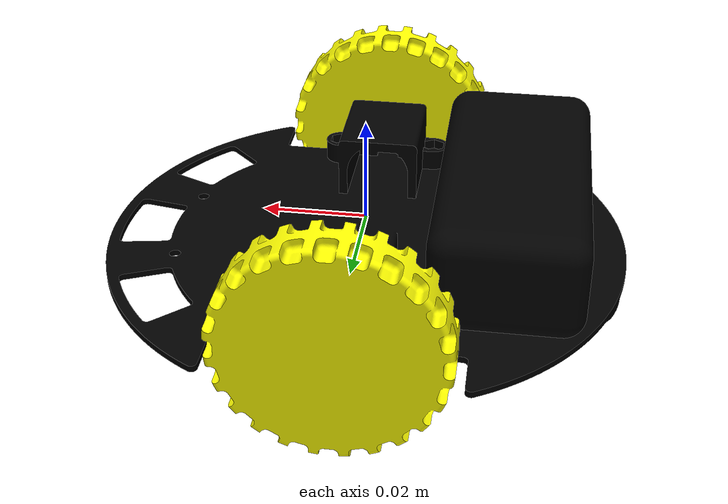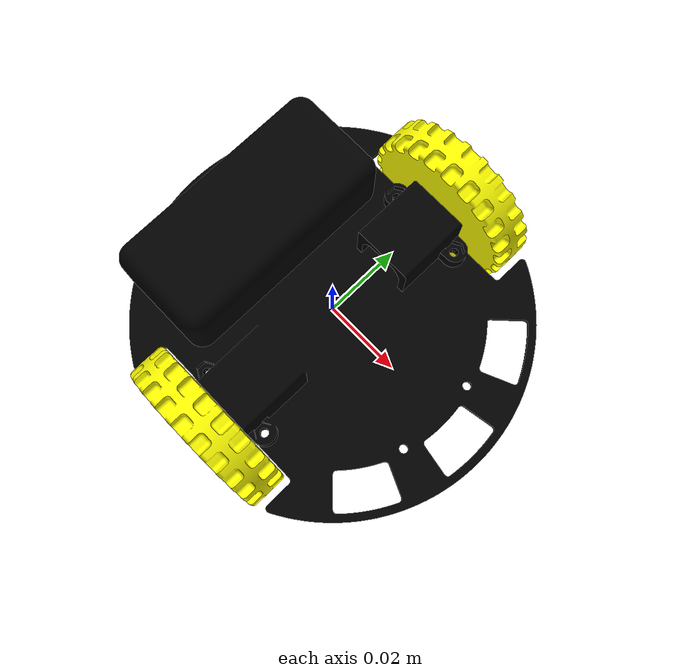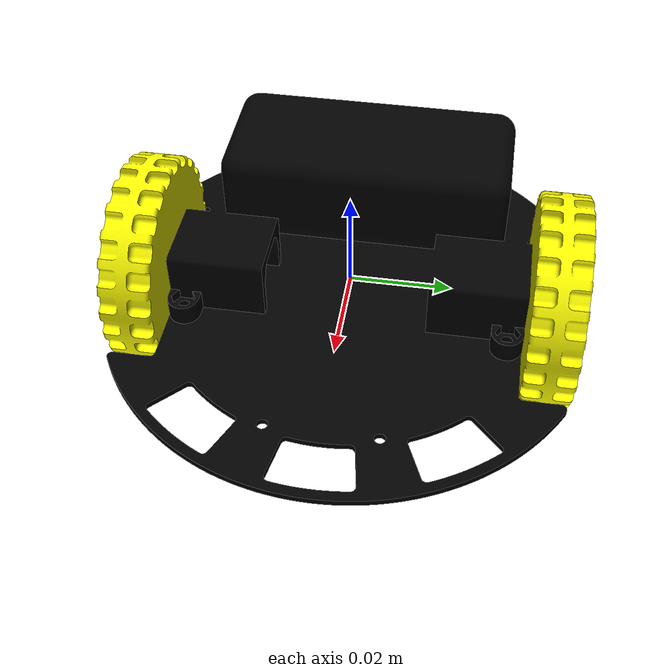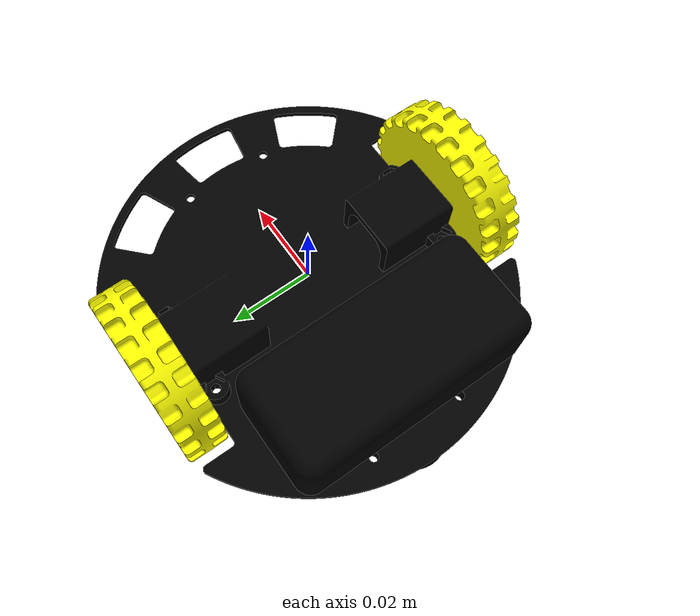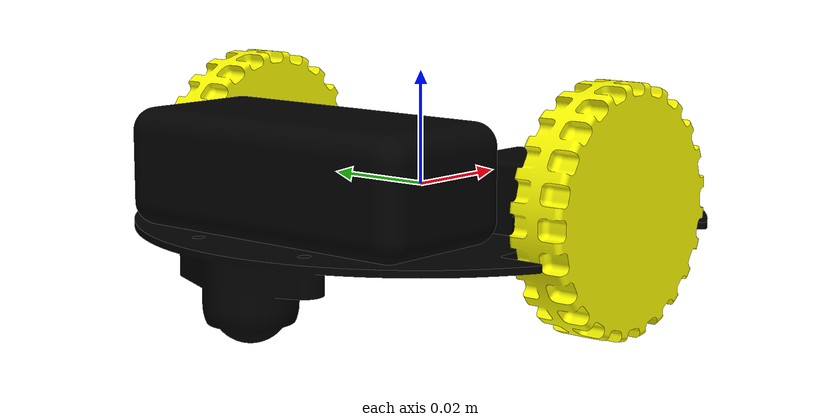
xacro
<?xml version="1.0" ?>
<robot name="urdf" xmlns:xacro="http://www.ros.org/wiki/xacro">

<xacro:include filename="$(find cobalt_simulation)/description/urdf/inertia.xacro" />
<xacro:include filename="$(find cobalt_simulation)/description/urdf/materials.xacro" />
<xacro:include filename="$(find cobalt_simulation)/description/urdf/urdf.gazebo" />
<xacro:include filename="$(find cobalt_simulation)/description/urdf/control.xacro" />

<!-- Base link -->

<link name="base_link">
</link>

<!-- Chassis -->

<link name="chassis">
    <visual>
        <origin xyz="0 0 ${1.7 * 0.001}" rpy="${pi} 0 0"/>
        <geometry>
          <mesh filename="file://$(find cobalt_simulation)/description/meshes/base_link.stl" scale="0.001 0.001 0.001"/>
        </geometry>
        <material name="black"/>
    </visual>
    <collision>
      <origin xyz="0 0 0" rpy="0 0 0"/>
      <geometry>
        <cylinder length="${26 * 0.001}" radius="${50 * 0.001}"/>
      </geometry>
    </collision>
    <xacro:inertial_cylinder mass="0.068" length="${1.7  * 0.001}" radius="${50 * 0.001}">
      <origin xyz="0 0 0" rpy="0 0 0"/>
    </xacro:inertial_cylinder>
</link>

<joint name="chassis_joint" type="fixed">
    <parent link="base_link"/>
    <child link="chassis"/>
    <origin xyz="0 0 ${-6.6 * 0.001}"/>
</joint>

<link name="battery">
    <visual>
        <origin xyz="0 0 0" rpy="0 0 0"/>
        <geometry>
            <mesh filename="file://$(find cobalt_simulation)/description/meshes/battery.stl" scale="0.001 0.001 0.001"/>
        </geometry>
        <material name="black"/>
    </visual>
    <collision>
      <origin xyz="0 0 0" rpy="0 0 0"/>
      <geometry>
        <box size="${28 * 0.001} ${60 * 0.001} ${20 * 0.001}"/>
      </geometry>
    </collision>
    <xacro:inertial_box mass="0.063" x="0" y="0" z="0">
      <origin xyz="0 0 0" rpy="0 0 0"/>
    </xacro:inertial_box>
</link>

<joint name="chassis_battery_joint" type="fixed">
    <parent link="chassis"/>
    <child link="battery"/>
    <origin xyz="${-28 * 0.001} 0 ${1.7 * 0.001}"/>
</joint>

<!-- Left wheel -->

<link name="left_wheel">
  <visual>
    <origin xyz="0 0 0" rpy="0 0 0"/>
    <geometry>
      <mesh filename="file://$(find cobalt_simulation)/description/meshes/tire.stl" scale="0.001 0.001 0.001"/>
    </geometry>
    <material name="yellow"/>
  </visual>
  <collision>
    <origin xyz="0 0 ${5 * 0.001}" rpy="0 0 0"/>
    <geometry>
      <cylinder length="${10 * 0.001}" radius="${21 * 0.001}"/>
    </geometry>
  </collision>
  <xacro:inertial_cylinder mass="0.008" length="${10  * 0.001}" radius="${21 * 0.001}">
    <origin xyz="0 0 0" rpy="0 0 0"/>
  </xacro:inertial_cylinder>
</link>

<joint name="left_wheel_joint" type="continuous">
  <origin xyz="0 ${35.4 * 0.001} 0" rpy="${-pi/2} 0 0"/>
  <parent link="base_link"/>
  <child link="left_wheel"/>
  <axis xyz="0.0 0.0 1.0"/>
</joint>

<!-- Right wheel -->

<link name="right_wheel">
  <visual>
    <origin xyz="0 0 0" rpy="0 0 0"/>
    <geometry>
      <mesh filename="file://$(find cobalt_simulation)/description/meshes/tire.stl" scale="0.001 0.001 0.001"/>
    </geometry>
    <material name="yellow"/>
  </visual>
  <collision>
    <origin xyz="0 0 ${5 * 0.001}" rpy="0 0 0"/>
    <geometry>
      <cylinder length="${10 * 0.001}" radius="${21 * 0.001}"/>
    </geometry>
  </collision>
  <xacro:inertial_cylinder mass="0.008" length="${10  * 0.001}" radius="${21 * 0.001}">
    <origin xyz="0 0 0" rpy="0 0 0"/>
  </xacro:inertial_cylinder>
</link>

<joint name="right_wheel_joint" type="continuous">
  <origin xyz="0 ${-35.4 * 0.001} 0" rpy="${pi/2} 0 0"/>
  <parent link="base_link"/>
  <child link="right_wheel"/>
  <axis xyz="0.0 0.0 -1.0"/>
</joint>

</robot>

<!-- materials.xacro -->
<robot name="urdf" xmlns:xacro="http://www.ros.org/wiki/xacro" >

<material name="silver">
  <color rgba="0.700 0.700 0.700 1.000"/>
</material>

<material name="red">
  <color rgba="1 0.1 0 1.000"/>
</material>

<material name="blue">
  <color rgba="0.1 0.1 1 1.000"/>
</material>

<material name="green">
  <color rgba="0.1 1 0.1 1.000"/>
</material>

<material name="black">
  <color rgba="0 0 0 1.000"/>
</material>

<material name="yellow">
  <color rgba="1 1 0 1.0"/>
</material>

</robot>

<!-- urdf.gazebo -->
<robot name="urdf" xmlns:xacro="http://www.ros.org/wiki/xacro" >

<xacro:property name="body_color" value="Gazebo/Black" />
<xacro:property name="wheel_color" value="Gazebo/Yellow" />

<gazebo reference="chassis">
  <material>${body_color}</material>
  <mu1 value="0.001"></mu1>
  <mu2 value="0.001"></mu2>
  <selfCollide>true</selfCollide>
  <gravity>true</gravity>
</gazebo>

<gazebo reference="left_wheel">
  <material>${wheel_color}</material>
  <mu1>0.2</mu1>
  <mu2>0.2</mu2>
  <selfCollide>true</selfCollide>
  <gravity>true</gravity>
</gazebo>

<gazebo reference="right_wheel">
  <material>${wheel_color}</material>
  <mu1>0.2</mu1>
  <mu2>0.2</mu2>
  <selfCollide>true</selfCollide>
  <gravity>true</gravity>
</gazebo>

<gazebo reference="battery">
  <material>${body_color}</material>
  <mu1>0.2</mu1>
  <mu2>0.2</mu2>
  <selfCollide>true</selfCollide>
  <gravity>true</gravity>
</gazebo>

</robot>
